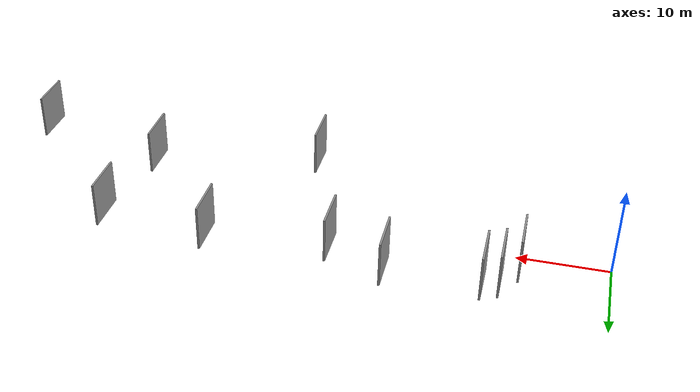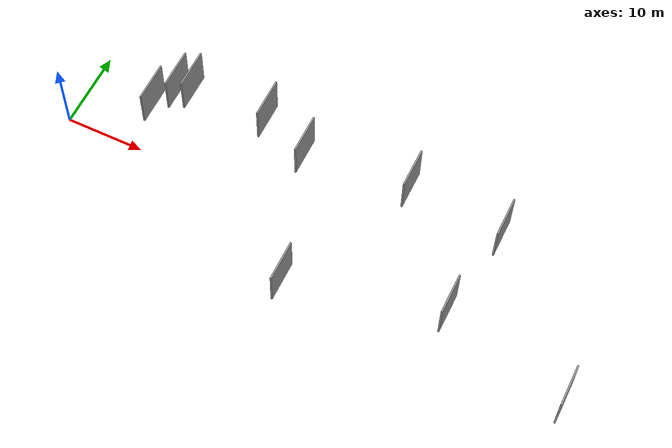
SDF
<sdf version="1.6">
 <world name="default">
  <scene>
   <sky><clouds><speed>12</speed></clouds></sky>
   <ambient>0.4 0.4 0.4 1</ambient>
   <background>0.7 0.7 0.7 1</background>
   <shadows>1</shadows>
  </scene>
  <gravity>0 0 -9.8066</gravity>
  <magnetic_field>6e-06 2.3e-05 -4.2e-05</magnetic_field>
  <physics default="0" name="default_physics" type="ode">
   <ode>
    <solver>
     <type>quick</type>
     <iters>10</iters>
     <sor>1.0</sor>
     <use_dynamic_moi_rescaling>0</use_dynamic_moi_rescaling>
    </solver>
    <constraints>
     <cfm>0</cfm>
     <erp>0.2</erp>
     <contact_max_correcting_vel>100</contact_max_correcting_vel>
     <contact_surface_layer>0.001</contact_surface_layer>
    </constraints>
   </ode>
   <max_step_size>0.004</max_step_size>
   <real_time_factor>1</real_time_factor>
   <real_time_update_rate>250</real_time_update_rate>
  </physics>
  <light name="sun" type="directional">
   <pose>0 0 10 0 0 0</pose>
   <diffuse>0.8 0.8 0.8 1</diffuse>
   <specular>0.2 0.2 0.2 1</specular>
   <attenuation>
    <range>1000</range>
    <constant>0.9</constant>
    <linear>0.01</linear>
    <quadratic>0.001</quadratic>
   </attenuation>
   <direction>-0.5 0.1 -0.9</direction>
  </light>
  <model name="grey_wall_1">
   <static>1</static>
   <pose>52.4663 -5.2284 2.5 0.000000 0.000000 1.570796</pose>
   <link name="link">
    <pose>0 0 2.50 0 0 0</pose>
    <collision name="collision"><geometry><box><size>5.00 0.2 5.00</size></box></geometry></collision>
    <visual name="visual">
     <cast_shadows>0</cast_shadows>
     <geometry><box><size>5.00 0.2 5.00</size></box></geometry>
     <material>
      <script>
       <uri>model://grey_wall/materials/scripts</uri>
       <uri>model://grey_wall/materials/textures</uri>
       <name>vrc/grey_wall</name>
      </script>
     </material>
    </visual>
   </link>
  </model>
  <model name="grey_wall_2">
   <static>1</static>
   <pose>11.0567 8.0217 2.5 0.000000 0.000000 1.570796</pose>
   <link name="link">
    <pose>0 0 2.50 0 0 0</pose>
    <collision name="collision"><geometry><box><size>5.00 0.2 5.00</size></box></geometry></collision>
    <visual name="visual">
     <cast_shadows>0</cast_shadows>
     <geometry><box><size>5.00 0.2 5.00</size></box></geometry>
     <material>
      <script>
       <uri>model://grey_wall/materials/scripts</uri>
       <uri>model://grey_wall/materials/textures</uri>
       <name>vrc/grey_wall</name>
      </script>
     </material>
    </visual>
   </link>
  </model>
  <model name="grey_wall_3">
   <static>1</static>
   <pose>54.2040 6.3766 2.5 0.000000 0.000000 1.570796</pose>
   <link name="link">
    <pose>0 0 2.50 0 0 0</pose>
    <collision name="collision"><geometry><box><size>5.00 0.2 5.00</size></box></geometry></collision>
    <visual name="visual">
     <cast_shadows>0</cast_shadows>
     <geometry><box><size>5.00 0.2 5.00</size></box></geometry>
     <material>
      <script>
       <uri>model://grey_wall/materials/scripts</uri>
       <uri>model://grey_wall/materials/textures</uri>
       <name>vrc/grey_wall</name>
      </script>
     </material>
    </visual>
   </link>
  </model>
  <model name="grey_wall_4">
   <static>1</static>
   <pose>9.3515 5.0580 2.5 0.000000 0.000000 1.570796</pose>
   <link name="link">
    <pose>0 0 2.50 0 0 0</pose>
    <collision name="collision"><geometry><box><size>5.00 0.2 5.00</size></box></geometry></collision>
    <visual name="visual">
     <cast_shadows>0</cast_shadows>
     <geometry><box><size>5.00 0.2 5.00</size></box></geometry>
     <material>
      <script>
       <uri>model://grey_wall/materials/scripts</uri>
       <uri>model://grey_wall/materials/textures</uri>
       <name>vrc/grey_wall</name>
      </script>
     </material>
    </visual>
   </link>
  </model>
  <model name="grey_wall_5">
   <static>1</static>
   <pose>34.0309 -9.7391 2.5 0.000000 0.000000 1.570796</pose>
   <link name="link">
    <pose>0 0 2.50 0 0 0</pose>
    <collision name="collision"><geometry><box><size>5.00 0.2 5.00</size></box></geometry></collision>
    <visual name="visual">
     <cast_shadows>0</cast_shadows>
     <geometry><box><size>5.00 0.2 5.00</size></box></geometry>
     <material>
      <script>
       <uri>model://grey_wall/materials/scripts</uri>
       <uri>model://grey_wall/materials/textures</uri>
       <name>vrc/grey_wall</name>
      </script>
     </material>
    </visual>
   </link>
  </model>
  <model name="grey_wall_6">
   <static>1</static>
   <pose>42.1688 7.6998 2.5 0.000000 0.000000 1.570796</pose>
   <link name="link">
    <pose>0 0 2.50 0 0 0</pose>
    <collision name="collision"><geometry><box><size>5.00 0.2 5.00</size></box></geometry></collision>
    <visual name="visual">
     <cast_shadows>0</cast_shadows>
     <geometry><box><size>5.00 0.2 5.00</size></box></geometry>
     <material>
      <script>
       <uri>model://grey_wall/materials/scripts</uri>
       <uri>model://grey_wall/materials/textures</uri>
       <name>vrc/grey_wall</name>
      </script>
     </material>
    </visual>
   </link>
  </model>
  <model name="grey_wall_7">
   <static>1</static>
   <pose>12.7495 8.8065 2.5 0.000000 0.000000 1.570796</pose>
   <link name="link">
    <pose>0 0 2.50 0 0 0</pose>
    <collision name="collision"><geometry><box><size>5.00 0.2 5.00</size></box></geometry></collision>
    <visual name="visual">
     <cast_shadows>0</cast_shadows>
     <geometry><box><size>5.00 0.2 5.00</size></box></geometry>
     <material>
      <script>
       <uri>model://grey_wall/materials/scripts</uri>
       <uri>model://grey_wall/materials/textures</uri>
       <name>vrc/grey_wall</name>
      </script>
     </material>
    </visual>
   </link>
  </model>
  <model name="grey_wall_8">
   <static>1</static>
   <pose>67.9645 -9.7053 2.5 0.000000 0.000000 1.570796</pose>
   <link name="link">
    <pose>0 0 2.50 0 0 0</pose>
    <collision name="collision"><geometry><box><size>5.00 0.2 5.00</size></box></geometry></collision>
    <visual name="visual">
     <cast_shadows>0</cast_shadows>
     <geometry><box><size>5.00 0.2 5.00</size></box></geometry>
     <material>
      <script>
       <uri>model://grey_wall/materials/scripts</uri>
       <uri>model://grey_wall/materials/textures</uri>
       <name>vrc/grey_wall</name>
      </script>
     </material>
    </visual>
   </link>
  </model>
  <model name="grey_wall_9">
   <static>1</static>
   <pose>28.9913 6.4663 2.5 0.000000 0.000000 1.570796</pose>
   <link name="link">
    <pose>0 0 2.50 0 0 0</pose>
    <collision name="collision"><geometry><box><size>5.00 0.2 5.00</size></box></geometry></collision>
    <visual name="visual">
     <cast_shadows>0</cast_shadows>
     <geometry><box><size>5.00 0.2 5.00</size></box></geometry>
     <material>
      <script>
       <uri>model://grey_wall/materials/scripts</uri>
       <uri>model://grey_wall/materials/textures</uri>
       <name>vrc/grey_wall</name>
      </script>
     </material>
    </visual>
   </link>
  </model>
  <model name="grey_wall_10">
   <static>1</static>
   <pose>22.7596 9.0211 2.5 0.000000 0.000000 1.570796</pose>
   <link name="link">
    <pose>0 0 2.50 0 0 0</pose>
    <collision name="collision"><geometry><box><size>5.00 0.2 5.00</size></box></geometry></collision>
    <visual name="visual">
     <cast_shadows>0</cast_shadows>
     <geometry><box><size>5.00 0.2 5.00</size></box></geometry>
     <material>
      <script>
       <uri>model://grey_wall/materials/scripts</uri>
       <uri>model://grey_wall/materials/textures</uri>
       <name>vrc/grey_wall</name>
      </script>
     </material>
    </visual>
   </link>
  </model>
 </world>
</sdf>
